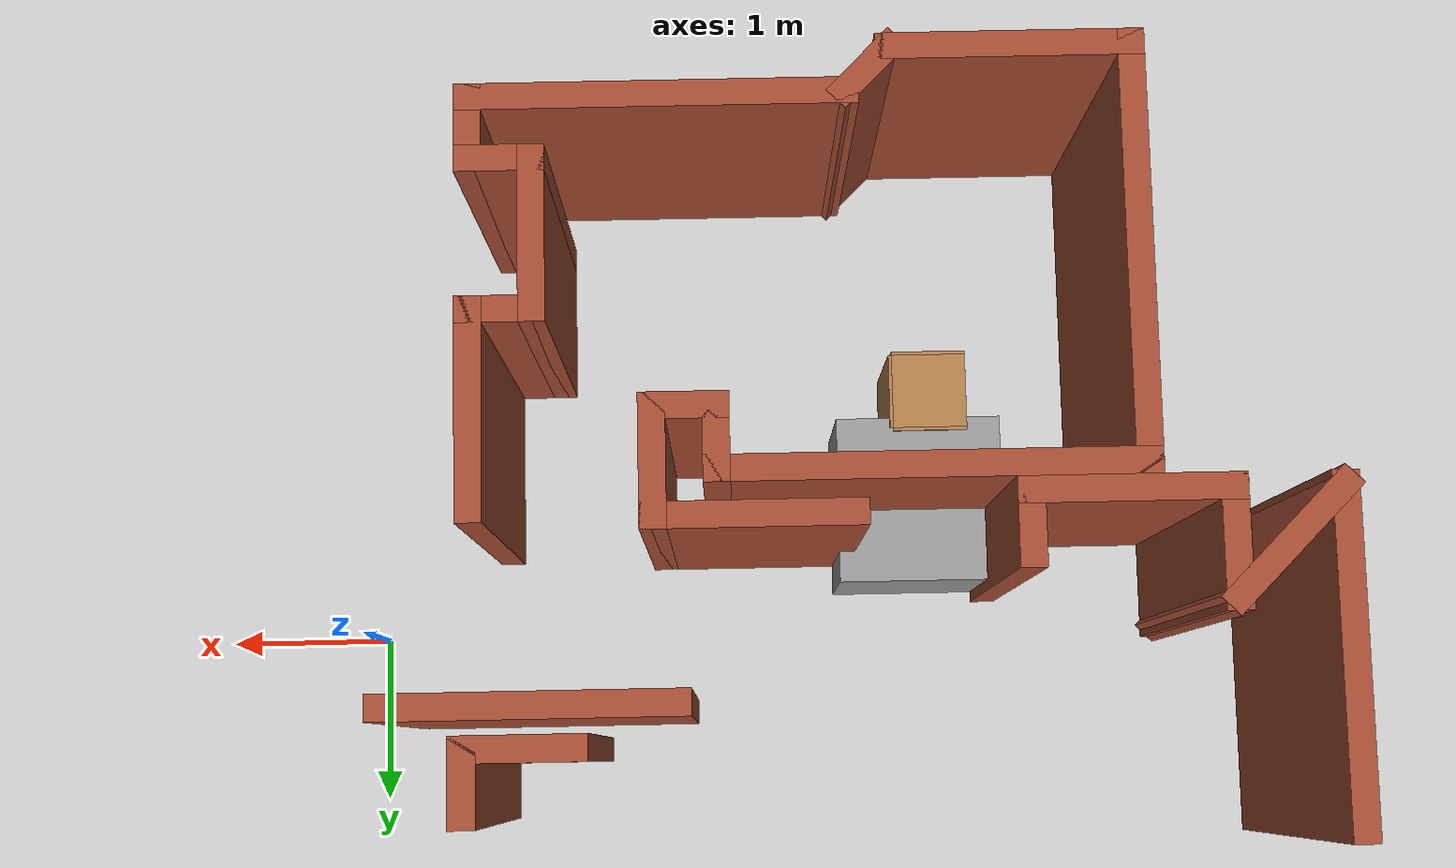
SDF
<sdf version="1.6">
 <world name="default">
  <model name="ground_plane">
   <static>1</static>
   <link name="link">
    <collision name="collision">
     <geometry><plane><normal>0 0 1</normal><size>100 100</size></plane></geometry>
     <surface><friction><ode><mu>100</mu><mu2>50</mu2></ode></friction></surface>
    </collision>
    <visual name="visual">
     <cast_shadows>0</cast_shadows>
     <geometry><plane><normal>0 0 1</normal><size>100 100</size></plane></geometry>
     <material>
      <script><uri>file://media/materials/scripts/gazebo.material</uri><name>Gazebo/Grey</name></script>
     </material>
    </visual>
   </link>
  </model>
  <model name="map_45">
   <link name="Wall_10">
    <pose>-5.12777 0.124368 0 0 0 -1.5708</pose>
    <visual name="Wall_10_Visual">
     <pose>0 0 1.25 0 -0 0</pose>
     <geometry><box><size>2 0.15 2.5</size></box></geometry>
     <material>
      <script><uri>file://media/materials/scripts/gazebo.material</uri><name>Gazebo/Bricks</name></script>
      <ambient>1 1 1 1</ambient>
      <shader type="pixel"/>
     </material>
     <meta><layer>0</layer></meta>
    </visual>
    <collision name="Wall_10_Collision">
     <pose>0 0 1.25 0 -0 0</pose>
     <geometry><box><size>2 0.15 2.5</size></box></geometry>
     <surface>
      <friction>
       <ode><mu>1</mu><mu2>1</mu2><fdir1>0 0 0</fdir1><slip1>0</slip1><slip2>0</slip2></ode>
       <torsional>
        <coefficient>1</coefficient>
        <patch_radius>0</patch_radius>
        <surface_radius>0</surface_radius>
        <use_patch_radius>1</use_patch_radius>
        <ode><slip>0</slip></ode>
       </torsional>
      </friction>
      <bounce><restitution_coefficient>0</restitution_coefficient><threshold>1e+06</threshold></bounce>
      <contact>
       <collide_without_contact>0</collide_without_contact>
       <collide_without_contact_bitmask>1</collide_without_contact_bitmask>
       <collide_bitmask>1</collide_bitmask>
       <ode>
        <soft_cfm>0</soft_cfm>
        <soft_erp>0.2</soft_erp>
        <kp>1e+13</kp>
        <kd>1</kd>
        <max_vel>0.01</max_vel>
        <min_depth>0</min_depth>
       </ode>
       <bullet>
        <split_impulse>1</split_impulse>
        <split_impulse_penetration_threshold>-0.01</split_impulse_penetration_threshold>
        <soft_cfm>0</soft_cfm>
        <soft_erp>0.2</soft_erp>
        <kp>1e+13</kp>
        <kd>1</kd>
       </bullet>
      </contact>
     </surface>
    </collision>
   </link>
   <link name="Wall_109">
    <pose>-0.640718 0.533638 0 0 -0 0</pose>
    <visual name="Wall_109_Visual">
     <pose>0 0 1.25 0 -0 0</pose>
     <geometry><box><size>0.75 0.15 2.5</size></box></geometry>
     <material>
      <script><uri>file://media/materials/scripts/gazebo.material</uri><name>Gazebo/Bricks</name></script>
      <ambient>1 1 1 1</ambient>
      <shader type="pixel"/>
     </material>
     <meta><layer>0</layer></meta>
    </visual>
    <collision name="Wall_109_Collision">
     <pose>0 0 1.25 0 -0 0</pose>
     <geometry><box><size>0.75 0.15 2.5</size></box></geometry>
     <surface>
      <friction>
       <ode><mu>1</mu><mu2>1</mu2><fdir1>0 0 0</fdir1><slip1>0</slip1><slip2>0</slip2></ode>
       <torsional>
        <coefficient>1</coefficient>
        <patch_radius>0</patch_radius>
        <surface_radius>0</surface_radius>
        <use_patch_radius>1</use_patch_radius>
        <ode><slip>0</slip></ode>
       </torsional>
      </friction>
      <bounce><restitution_coefficient>0</restitution_coefficient><threshold>1e+06</threshold></bounce>
      <contact>
       <collide_without_contact>0</collide_without_contact>
       <collide_without_contact_bitmask>1</collide_without_contact_bitmask>
       <collide_bitmask>1</collide_bitmask>
       <ode>
        <soft_cfm>0</soft_cfm>
        <soft_erp>0.2</soft_erp>
        <kp>1e+13</kp>
        <kd>1</kd>
        <max_vel>0.01</max_vel>
        <min_depth>0</min_depth>
       </ode>
       <bullet>
        <split_impulse>1</split_impulse>
        <split_impulse_penetration_threshold>-0.01</split_impulse_penetration_threshold>
        <soft_cfm>0</soft_cfm>
        <soft_erp>0.2</soft_erp>
        <kp>1e+13</kp>
        <kd>1</kd>
       </bullet>
      </contact>
     </surface>
    </collision>
   </link>
   <link name="Wall_11">
    <pose>-4.82725 -0.500111 0 0 -0 0.785398</pose>
    <visual name="Wall_11_Visual">
     <pose>0 0 1.25 0 -0 0</pose>
     <geometry><box><size>1 0.15 2.5</size></box></geometry>
     <material>
      <script><uri>file://media/materials/scripts/gazebo.material</uri><name>Gazebo/Bricks</name></script>
      <ambient>1 1 1 1</ambient>
      <shader type="pixel"/>
     </material>
     <meta><layer>0</layer></meta>
    </visual>
    <collision name="Wall_11_Collision">
     <pose>0 0 1.25 0 -0 0</pose>
     <geometry><box><size>1 0.15 2.5</size></box></geometry>
     <surface>
      <friction>
       <ode><mu>1</mu><mu2>1</mu2><fdir1>0 0 0</fdir1><slip1>0</slip1><slip2>0</slip2></ode>
       <torsional>
        <coefficient>1</coefficient>
        <patch_radius>0</patch_radius>
        <surface_radius>0</surface_radius>
        <use_patch_radius>1</use_patch_radius>
        <ode><slip>0</slip></ode>
       </torsional>
      </friction>
      <bounce><restitution_coefficient>0</restitution_coefficient><threshold>1e+06</threshold></bounce>
      <contact>
       <collide_without_contact>0</collide_without_contact>
       <collide_without_contact_bitmask>1</collide_without_contact_bitmask>
       <collide_bitmask>1</collide_bitmask>
       <ode>
        <soft_cfm>0</soft_cfm>
        <soft_erp>0.2</soft_erp>
        <kp>1e+13</kp>
        <kd>1</kd>
        <max_vel>0.01</max_vel>
        <min_depth>0</min_depth>
       </ode>
       <bullet>
        <split_impulse>1</split_impulse>
        <split_impulse_penetration_threshold>-0.01</split_impulse_penetration_threshold>
        <soft_cfm>0</soft_cfm>
        <soft_erp>0.2</soft_erp>
        <kp>1e+13</kp>
        <kd>1</kd>
       </bullet>
      </contact>
     </surface>
    </collision>
   </link>
   <link name="Wall_110">
    <pose>-0.340718 0.708638 0 0 -0 1.5708</pose>
    <visual name="Wall_110_Visual">
     <pose>0 0 1.25 0 -0 0</pose>
     <geometry><box><size>0.5 0.15 2.5</size></box></geometry>
     <material>
      <script><uri>file://media/materials/scripts/gazebo.material</uri><name>Gazebo/Bricks</name></script>
      <ambient>1 1 1 1</ambient>
      <shader type="pixel"/>
     </material>
     <meta><layer>0</layer></meta>
    </visual>
    <collision name="Wall_110_Collision">
     <pose>0 0 1.25 0 -0 0</pose>
     <geometry><box><size>0.5 0.15 2.5</size></box></geometry>
     <surface>
      <friction>
       <ode><mu>1</mu><mu2>1</mu2><fdir1>0 0 0</fdir1><slip1>0</slip1><slip2>0</slip2></ode>
       <torsional>
        <coefficient>1</coefficient>
        <patch_radius>0</patch_radius>
        <surface_radius>0</surface_radius>
        <use_patch_radius>1</use_patch_radius>
        <ode><slip>0</slip></ode>
       </torsional>
      </friction>
      <bounce><restitution_coefficient>0</restitution_coefficient><threshold>1e+06</threshold></bounce>
      <contact>
       <collide_without_contact>0</collide_without_contact>
       <collide_without_contact_bitmask>1</collide_without_contact_bitmask>
       <collide_bitmask>1</collide_bitmask>
       <ode>
        <soft_cfm>0</soft_cfm>
        <soft_erp>0.2</soft_erp>
        <kp>1e+13</kp>
        <kd>1</kd>
        <max_vel>0.01</max_vel>
        <min_depth>0</min_depth>
       </ode>
       <bullet>
        <split_impulse>1</split_impulse>
        <split_impulse_penetration_threshold>-0.01</split_impulse_penetration_threshold>
        <soft_cfm>0</soft_cfm>
        <soft_erp>0.2</soft_erp>
        <kp>1e+13</kp>
        <kd>1</kd>
       </bullet>
      </contact>
     </surface>
    </collision>
   </link>
   <link name="Wall_113">
    <pose>-0.696009 0.304083 0 0 -0 3.14159</pose>
    <visual name="Wall_113_Visual">
     <pose>0 0 1.25 0 -0 0</pose>
     <geometry><box><size>1.75 0.15 2.5</size></box></geometry>
     <material>
      <script><uri>file://media/materials/scripts/gazebo.material</uri><name>Gazebo/Bricks</name></script>
      <ambient>1 1 1 1</ambient>
      <shader type="pixel"/>
     </material>
     <meta><layer>0</layer></meta>
    </visual>
    <collision name="Wall_113_Collision">
     <pose>0 0 1.25 0 -0 0</pose>
     <geometry><box><size>1.75 0.15 2.5</size></box></geometry>
     <surface>
      <friction>
       <ode><mu>1</mu><mu2>1</mu2><fdir1>0 0 0</fdir1><slip1>0</slip1><slip2>0</slip2></ode>
       <torsional>
        <coefficient>1</coefficient>
        <patch_radius>0</patch_radius>
        <surface_radius>0</surface_radius>
        <use_patch_radius>1</use_patch_radius>
        <ode><slip>0</slip></ode>
       </torsional>
      </friction>
      <bounce><restitution_coefficient>0</restitution_coefficient><threshold>1e+06</threshold></bounce>
      <contact>
       <collide_without_contact>0</collide_without_contact>
       <collide_without_contact_bitmask>1</collide_without_contact_bitmask>
       <collide_bitmask>1</collide_bitmask>
       <ode>
        <soft_cfm>0</soft_cfm>
        <soft_erp>0.2</soft_erp>
        <kp>1e+13</kp>
        <kd>1</kd>
        <max_vel>0.01</max_vel>
        <min_depth>0</min_depth>
       </ode>
       <bullet>
        <split_impulse>1</split_impulse>
        <split_impulse_penetration_threshold>-0.01</split_impulse_penetration_threshold>
        <soft_cfm>0</soft_cfm>
        <soft_erp>0.2</soft_erp>
        <kp>1e+13</kp>
        <kd>1</kd>
       </bullet>
      </contact>
     </surface>
    </collision>
   </link>
   <link name="Wall_12">
    <pose>-4.52673 -0.499591 0 0 0 -1.5708</pose>
    <visual name="Wall_12_Visual">
     <pose>0 0 1.25 0 -0 0</pose>
     <geometry><box><size>0.75 0.15 2.5</size></box></geometry>
     <material>
      <script><uri>file://media/materials/scripts/gazebo.material</uri><name>Gazebo/Bricks</name></script>
      <ambient>1 1 1 1</ambient>
      <shader type="pixel"/>
     </material>
     <meta><layer>0</layer></meta>
    </visual>
    <collision name="Wall_12_Collision">
     <pose>0 0 1.25 0 -0 0</pose>
     <geometry><box><size>0.75 0.15 2.5</size></box></geometry>
     <surface>
      <friction>
       <ode><mu>1</mu><mu2>1</mu2><fdir1>0 0 0</fdir1><slip1>0</slip1><slip2>0</slip2></ode>
       <torsional>
        <coefficient>1</coefficient>
        <patch_radius>0</patch_radius>
        <surface_radius>0</surface_radius>
        <use_patch_radius>1</use_patch_radius>
        <ode><slip>0</slip></ode>
       </torsional>
      </friction>
      <bounce><restitution_coefficient>0</restitution_coefficient><threshold>1e+06</threshold></bounce>
      <contact>
       <collide_without_contact>0</collide_without_contact>
       <collide_without_contact_bitmask>1</collide_without_contact_bitmask>
       <collide_bitmask>1</collide_bitmask>
       <ode>
        <soft_cfm>0</soft_cfm>
        <soft_erp>0.2</soft_erp>
        <kp>1e+13</kp>
        <kd>1</kd>
        <max_vel>0.01</max_vel>
        <min_depth>0</min_depth>
       </ode>
       <bullet>
        <split_impulse>1</split_impulse>
        <split_impulse_penetration_threshold>-0.01</split_impulse_penetration_threshold>
        <soft_cfm>0</soft_cfm>
        <soft_erp>0.2</soft_erp>
        <kp>1e+13</kp>
        <kd>1</kd>
       </bullet>
      </contact>
     </surface>
    </collision>
   </link>
   <link name="Wall_15">
    <pose>-3.97673 -0.799591 0 0 -0 0</pose>
    <visual name="Wall_15_Visual">
     <pose>0 0 1.25 0 -0 0</pose>
     <geometry><box><size>1.25 0.15 2.5</size></box></geometry>
     <material>
      <script><uri>file://media/materials/scripts/gazebo.material</uri><name>Gazebo/Bricks</name></script>
      <ambient>1 1 1 1</ambient>
      <shader type="pixel"/>
     </material>
     <meta><layer>0</layer></meta>
    </visual>
    <collision name="Wall_15_Collision">
     <pose>0 0 1.25 0 -0 0</pose>
     <geometry><box><size>1.25 0.15 2.5</size></box></geometry>
     <surface>
      <friction>
       <ode><mu>1</mu><mu2>1</mu2><fdir1>0 0 0</fdir1><slip1>0</slip1><slip2>0</slip2></ode>
       <torsional>
        <coefficient>1</coefficient>
        <patch_radius>0</patch_radius>
        <surface_radius>0</surface_radius>
        <use_patch_radius>1</use_patch_radius>
        <ode><slip>0</slip></ode>
       </torsional>
      </friction>
      <bounce><restitution_coefficient>0</restitution_coefficient><threshold>1e+06</threshold></bounce>
      <contact>
       <collide_without_contact>0</collide_without_contact>
       <collide_without_contact_bitmask>1</collide_without_contact_bitmask>
       <collide_bitmask>1</collide_bitmask>
       <ode>
        <soft_cfm>0</soft_cfm>
        <soft_erp>0.2</soft_erp>
        <kp>1e+13</kp>
        <kd>1</kd>
        <max_vel>0.01</max_vel>
        <min_depth>0</min_depth>
       </ode>
       <bullet>
        <split_impulse>1</split_impulse>
        <split_impulse_penetration_threshold>-0.01</split_impulse_penetration_threshold>
        <soft_cfm>0</soft_cfm>
        <soft_erp>0.2</soft_erp>
        <kp>1e+13</kp>
        <kd>1</kd>
       </bullet>
      </contact>
     </surface>
    </collision>
   </link>
   <link name="Wall_16">
    <pose>-3.42673 -0.624591 0 0 -0 1.5708</pose>
    <visual name="Wall_16_Visual">
     <pose>0 0 1.25 0 -0 0</pose>
     <geometry><box><size>0.5 0.15 2.5</size></box></geometry>
     <material>
      <script><uri>file://media/materials/scripts/gazebo.material</uri><name>Gazebo/Bricks</name></script>
      <ambient>1 1 1 1</ambient>
      <shader type="pixel"/>
     </material>
     <meta><layer>0</layer></meta>
    </visual>
    <collision name="Wall_16_Collision">
     <pose>0 0 1.25 0 -0 0</pose>
     <geometry><box><size>0.5 0.15 2.5</size></box></geometry>
     <surface>
      <friction>
       <ode><mu>1</mu><mu2>1</mu2><fdir1>0 0 0</fdir1><slip1>0</slip1><slip2>0</slip2></ode>
       <torsional>
        <coefficient>1</coefficient>
        <patch_radius>0</patch_radius>
        <surface_radius>0</surface_radius>
        <use_patch_radius>1</use_patch_radius>
        <ode><slip>0</slip></ode>
       </torsional>
      </friction>
      <bounce><restitution_coefficient>0</restitution_coefficient><threshold>1e+06</threshold></bounce>
      <contact>
       <collide_without_contact>0</collide_without_contact>
       <collide_without_contact_bitmask>1</collide_without_contact_bitmask>
       <collide_bitmask>1</collide_bitmask>
       <ode>
        <soft_cfm>0</soft_cfm>
        <soft_erp>0.2</soft_erp>
        <kp>1e+13</kp>
        <kd>1</kd>
        <max_vel>0.01</max_vel>
        <min_depth>0</min_depth>
       </ode>
       <bullet>
        <split_impulse>1</split_impulse>
        <split_impulse_penetration_threshold>-0.01</split_impulse_penetration_threshold>
        <soft_cfm>0</soft_cfm>
        <soft_erp>0.2</soft_erp>
        <kp>1e+13</kp>
        <kd>1</kd>
       </bullet>
      </contact>
     </surface>
    </collision>
   </link>
   <link name="Wall_23">
    <pose>-1.92673 -0.699591 0 0 -0 0</pose>
    <visual name="Wall_23_Visual">
     <pose>0 0 1.25 0 -0 0</pose>
     <geometry><box><size>1.25 0.15 2.5</size></box></geometry>
     <material>
      <script><uri>file://media/materials/scripts/gazebo.material</uri><name>Gazebo/Bricks</name></script>
      <ambient>1 1 1 1</ambient>
      <shader type="pixel"/>
     </material>
     <meta><layer>0</layer></meta>
    </visual>
    <collision name="Wall_23_Collision">
     <pose>0 0 1.25 0 -0 0</pose>
     <geometry><box><size>1.25 0.15 2.5</size></box></geometry>
     <surface>
      <friction>
       <ode><mu>1</mu><mu2>1</mu2><fdir1>0 0 0</fdir1><slip1>0</slip1><slip2>0</slip2></ode>
       <torsional>
        <coefficient>1</coefficient>
        <patch_radius>0</patch_radius>
        <surface_radius>0</surface_radius>
        <use_patch_radius>1</use_patch_radius>
        <ode><slip>0</slip></ode>
       </torsional>
      </friction>
      <bounce><restitution_coefficient>0</restitution_coefficient><threshold>1e+06</threshold></bounce>
      <contact>
       <collide_without_contact>0</collide_without_contact>
       <collide_without_contact_bitmask>1</collide_without_contact_bitmask>
       <collide_bitmask>1</collide_bitmask>
       <ode>
        <soft_cfm>0</soft_cfm>
        <soft_erp>0.2</soft_erp>
        <kp>1e+13</kp>
        <kd>1</kd>
        <max_vel>0.01</max_vel>
        <min_depth>0</min_depth>
       </ode>
       <bullet>
        <split_impulse>1</split_impulse>
        <split_impulse_penetration_threshold>-0.01</split_impulse_penetration_threshold>
        <soft_cfm>0</soft_cfm>
        <soft_erp>0.2</soft_erp>
        <kp>1e+13</kp>
        <kd>1</kd>
       </bullet>
      </contact>
     </surface>
    </collision>
   </link>
   <link name="Wall_24">
    <pose>-1.37673 -0.999591 0 0 0 -1.5708</pose>
    <visual name="Wall_24_Visual">
     <pose>0 0 1.25 0 -0 0</pose>
     <geometry><box><size>0.75 0.15 2.5</size></box></geometry>
     <material>
      <script><uri>file://media/materials/scripts/gazebo.material</uri><name>Gazebo/Bricks</name></script>
      <ambient>1 1 1 1</ambient>
      <shader type="pixel"/>
     </material>
     <meta><layer>0</layer></meta>
    </visual>
    <collision name="Wall_24_Collision">
     <pose>0 0 1.25 0 -0 0</pose>
     <geometry><box><size>0.75 0.15 2.5</size></box></geometry>
     <surface>
      <friction>
       <ode><mu>1</mu><mu2>1</mu2><fdir1>0 0 0</fdir1><slip1>0</slip1><slip2>0</slip2></ode>
       <torsional>
        <coefficient>1</coefficient>
        <patch_radius>0</patch_radius>
        <surface_radius>0</surface_radius>
        <use_patch_radius>1</use_patch_radius>
        <ode><slip>0</slip></ode>
       </torsional>
      </friction>
      <bounce><restitution_coefficient>0</restitution_coefficient><threshold>1e+06</threshold></bounce>
      <contact>
       <collide_without_contact>0</collide_without_contact>
       <collide_without_contact_bitmask>1</collide_without_contact_bitmask>
       <collide_bitmask>1</collide_bitmask>
       <ode>
        <soft_cfm>0</soft_cfm>
        <soft_erp>0.2</soft_erp>
        <kp>1e+13</kp>
        <kd>1</kd>
        <max_vel>0.01</max_vel>
        <min_depth>0</min_depth>
       </ode>
       <bullet>
        <split_impulse>1</split_impulse>
        <split_impulse_penetration_threshold>-0.01</split_impulse_penetration_threshold>
        <soft_cfm>0</soft_cfm>
        <soft_erp>0.2</soft_erp>
        <kp>1e+13</kp>
        <kd>1</kd>
       </bullet>
      </contact>
     </surface>
    </collision>
   </link>
   <link name="Wall_25">
    <pose>-1.55173 -1.29959 0 0 -0 3.14159</pose>
    <visual name="Wall_25_Visual">
     <pose>0 0 1.25 0 -0 0</pose>
     <geometry><box><size>0.5 0.15 2.5</size></box></geometry>
     <material>
      <script><uri>file://media/materials/scripts/gazebo.material</uri><name>Gazebo/Bricks</name></script>
      <ambient>1 1 1 1</ambient>
      <shader type="pixel"/>
     </material>
     <meta><layer>0</layer></meta>
    </visual>
    <collision name="Wall_25_Collision">
     <pose>0 0 1.25 0 -0 0</pose>
     <geometry><box><size>0.5 0.15 2.5</size></box></geometry>
     <surface>
      <friction>
       <ode><mu>1</mu><mu2>1</mu2><fdir1>0 0 0</fdir1><slip1>0</slip1><slip2>0</slip2></ode>
       <torsional>
        <coefficient>1</coefficient>
        <patch_radius>0</patch_radius>
        <surface_radius>0</surface_radius>
        <use_patch_radius>1</use_patch_radius>
        <ode><slip>0</slip></ode>
       </torsional>
      </friction>
      <bounce><restitution_coefficient>0</restitution_coefficient><threshold>1e+06</threshold></bounce>
      <contact>
       <collide_without_contact>0</collide_without_contact>
       <collide_without_contact_bitmask>1</collide_without_contact_bitmask>
       <collide_bitmask>1</collide_bitmask>
       <ode>
        <soft_cfm>0</soft_cfm>
        <soft_erp>0.2</soft_erp>
        <kp>1e+13</kp>
        <kd>1</kd>
        <max_vel>0.01</max_vel>
        <min_depth>0</min_depth>
       </ode>
       <bullet>
        <split_impulse>1</split_impulse>
        <split_impulse_penetration_threshold>-0.01</split_impulse_penetration_threshold>
        <soft_cfm>0</soft_cfm>
        <soft_erp>0.2</soft_erp>
        <kp>1e+13</kp>
        <kd>1</kd>
       </bullet>
      </contact>
     </surface>
    </collision>
   </link>
   <link name="Wall_26">
    <pose>-1.72673 -1.12459 0 0 -0 1.5708</pose>
    <visual name="Wall_26_Visual">
     <pose>0 0 1.25 0 -0 0</pose>
     <geometry><box><size>0.5 0.15 2.5</size></box></geometry>
     <material>
      <script><uri>file://media/materials/scripts/gazebo.material</uri><name>Gazebo/Bricks</name></script>
      <ambient>1 1 1 1</ambient>
      <shader type="pixel"/>
     </material>
     <meta><layer>0</layer></meta>
    </visual>
    <collision name="Wall_26_Collision">
     <pose>0 0 1.25 0 -0 0</pose>
     <geometry><box><size>0.5 0.15 2.5</size></box></geometry>
     <surface>
      <friction>
       <ode><mu>1</mu><mu2>1</mu2><fdir1>0 0 0</fdir1><slip1>0</slip1><slip2>0</slip2></ode>
       <torsional>
        <coefficient>1</coefficient>
        <patch_radius>0</patch_radius>
        <surface_radius>0</surface_radius>
        <use_patch_radius>1</use_patch_radius>
        <ode><slip>0</slip></ode>
       </torsional>
      </friction>
      <bounce><restitution_coefficient>0</restitution_coefficient><threshold>1e+06</threshold></bounce>
      <contact>
       <collide_without_contact>0</collide_without_contact>
       <collide_without_contact_bitmask>1</collide_without_contact_bitmask>
       <collide_bitmask>1</collide_bitmask>
       <ode>
        <soft_cfm>0</soft_cfm>
        <soft_erp>0.2</soft_erp>
        <kp>1e+13</kp>
        <kd>1</kd>
        <max_vel>0.01</max_vel>
        <min_depth>0</min_depth>
       </ode>
       <bullet>
        <split_impulse>1</split_impulse>
        <split_impulse_penetration_threshold>-0.01</split_impulse_penetration_threshold>
        <soft_cfm>0</soft_cfm>
        <soft_erp>0.2</soft_erp>
        <kp>1e+13</kp>
        <kd>1</kd>
       </bullet>
      </contact>
     </surface>
    </collision>
   </link>
   <link name="Wall_27">
    <pose>-2.90173 -0.949591 0 0 -0 3.14159</pose>
    <visual name="Wall_27_Visual">
     <pose>0 0 1.25 0 -0 0</pose>
     <geometry><box><size>2.5 0.15 2.5</size></box></geometry>
     <material>
      <script><uri>file://media/materials/scripts/gazebo.material</uri><name>Gazebo/Bricks</name></script>
      <ambient>1 1 1 1</ambient>
      <shader type="pixel"/>
     </material>
     <meta><layer>0</layer></meta>
    </visual>
    <collision name="Wall_27_Collision">
     <pose>0 0 1.25 0 -0 0</pose>
     <geometry><box><size>2.5 0.15 2.5</size></box></geometry>
     <surface>
      <friction>
       <ode><mu>1</mu><mu2>1</mu2><fdir1>0 0 0</fdir1><slip1>0</slip1><slip2>0</slip2></ode>
       <torsional>
        <coefficient>1</coefficient>
        <patch_radius>0</patch_radius>
        <surface_radius>0</surface_radius>
        <use_patch_radius>1</use_patch_radius>
        <ode><slip>0</slip></ode>
       </torsional>
      </friction>
      <bounce><restitution_coefficient>0</restitution_coefficient><threshold>1e+06</threshold></bounce>
      <contact>
       <collide_without_contact>0</collide_without_contact>
       <collide_without_contact_bitmask>1</collide_without_contact_bitmask>
       <collide_bitmask>1</collide_bitmask>
       <ode>
        <soft_cfm>0</soft_cfm>
        <soft_erp>0.2</soft_erp>
        <kp>1e+13</kp>
        <kd>1</kd>
        <max_vel>0.01</max_vel>
        <min_depth>0</min_depth>
       </ode>
       <bullet>
        <split_impulse>1</split_impulse>
        <split_impulse_penetration_threshold>-0.01</split_impulse_penetration_threshold>
        <soft_cfm>0</soft_cfm>
        <soft_erp>0.2</soft_erp>
        <kp>1e+13</kp>
        <kd>1</kd>
       </bullet>
      </contact>
     </surface>
    </collision>
   </link>
   <link name="Wall_28">
    <pose>-4.07673 -2.12459 0 0 0 -1.5708</pose>
    <visual name="Wall_28_Visual">
     <pose>0 0 1.25 0 -0 0</pose>
     <geometry><box><size>2.5 0.15 2.5</size></box></geometry>
     <material>
      <script><uri>file://media/materials/scripts/gazebo.material</uri><name>Gazebo/Bricks</name></script>
      <ambient>1 1 1 1</ambient>
      <shader type="pixel"/>
     </material>
     <meta><layer>0</layer></meta>
    </visual>
    <collision name="Wall_28_Collision">
     <pose>0 0 1.25 0 -0 0</pose>
     <geometry><box><size>2.5 0.15 2.5</size></box></geometry>
     <surface>
      <friction>
       <ode><mu>1</mu><mu2>1</mu2><fdir1>0 0 0</fdir1><slip1>0</slip1><slip2>0</slip2></ode>
       <torsional>
        <coefficient>1</coefficient>
        <patch_radius>0</patch_radius>
        <surface_radius>0</surface_radius>
        <use_patch_radius>1</use_patch_radius>
        <ode><slip>0</slip></ode>
       </torsional>
      </friction>
      <bounce><restitution_coefficient>0</restitution_coefficient><threshold>1e+06</threshold></bounce>
      <contact>
       <collide_without_contact>0</collide_without_contact>
       <collide_without_contact_bitmask>1</collide_without_contact_bitmask>
       <collide_bitmask>1</collide_bitmask>
       <ode>
        <soft_cfm>0</soft_cfm>
        <soft_erp>0.2</soft_erp>
        <kp>1e+13</kp>
        <kd>1</kd>
        <max_vel>0.01</max_vel>
        <min_depth>0</min_depth>
       </ode>
       <bullet>
        <split_impulse>1</split_impulse>
        <split_impulse_penetration_threshold>-0.01</split_impulse_penetration_threshold>
        <soft_cfm>0</soft_cfm>
        <soft_erp>0.2</soft_erp>
        <kp>1e+13</kp>
        <kd>1</kd>
       </bullet>
      </contact>
     </surface>
    </collision>
   </link>
   <link name="Wall_29">
    <pose>-3.40173 -3.29959 0 0 -0 0</pose>
    <visual name="Wall_29_Visual">
     <pose>0 0 1.25 0 -0 0</pose>
     <geometry><box><size>1.5 0.15 2.5</size></box></geometry>
     <material>
      <script><uri>file://media/materials/scripts/gazebo.material</uri><name>Gazebo/Bricks</name></script>
      <ambient>1 1 1 1</ambient>
      <shader type="pixel"/>
     </material>
     <meta><layer>0</layer></meta>
    </visual>
    <collision name="Wall_29_Collision">
     <pose>0 0 1.25 0 -0 0</pose>
     <geometry><box><size>1.5 0.15 2.5</size></box></geometry>
     <surface>
      <friction>
       <ode><mu>1</mu><mu2>1</mu2><fdir1>0 0 0</fdir1><slip1>0</slip1><slip2>0</slip2></ode>
       <torsional>
        <coefficient>1</coefficient>
        <patch_radius>0</patch_radius>
        <surface_radius>0</surface_radius>
        <use_patch_radius>1</use_patch_radius>
        <ode><slip>0</slip></ode>
       </torsional>
      </friction>
      <bounce><restitution_coefficient>0</restitution_coefficient><threshold>1e+06</threshold></bounce>
      <contact>
       <collide_without_contact>0</collide_without_contact>
       <collide_without_contact_bitmask>1</collide_without_contact_bitmask>
       <collide_bitmask>1</collide_bitmask>
       <ode>
        <soft_cfm>0</soft_cfm>
        <soft_erp>0.2</soft_erp>
        <kp>1e+13</kp>
        <kd>1</kd>
        <max_vel>0.01</max_vel>
        <min_depth>0</min_depth>
       </ode>
       <bullet>
        <split_impulse>1</split_impulse>
        <split_impulse_penetration_threshold>-0.01</split_impulse_penetration_threshold>
        <soft_cfm>0</soft_cfm>
        <soft_erp>0.2</soft_erp>
        <kp>1e+13</kp>
        <kd>1</kd>
       </bullet>
      </contact>
     </surface>
    </collision>
   </link>
   <link name="Wall_30">
    <pose>-2.60298 -3.17585 0 0 -0 0.785398</pose>
    <visual name="Wall_30_Visual">
     <pose>0 0 1.25 0 -0 0</pose>
     <geometry><box><size>0.5 0.15 2.5</size></box></geometry>
     <material>
      <script><uri>file://media/materials/scripts/gazebo.material</uri><name>Gazebo/Bricks</name></script>
      <ambient>1 1 1 1</ambient>
      <shader type="pixel"/>
     </material>
     <meta><layer>0</layer></meta>
    </visual>
    <collision name="Wall_30_Collision">
     <pose>0 0 1.25 0 -0 0</pose>
     <geometry><box><size>0.5 0.15 2.5</size></box></geometry>
     <surface>
      <friction>
       <ode><mu>1</mu><mu2>1</mu2><fdir1>0 0 0</fdir1><slip1>0</slip1><slip2>0</slip2></ode>
       <torsional>
        <coefficient>1</coefficient>
        <patch_radius>0</patch_radius>
        <surface_radius>0</surface_radius>
        <use_patch_radius>1</use_patch_radius>
        <ode><slip>0</slip></ode>
       </torsional>
      </friction>
      <bounce><restitution_coefficient>0</restitution_coefficient><threshold>1e+06</threshold></bounce>
      <contact>
       <collide_without_contact>0</collide_without_contact>
       <collide_without_contact_bitmask>1</collide_without_contact_bitmask>
       <collide_bitmask>1</collide_bitmask>
       <ode>
        <soft_cfm>0</soft_cfm>
        <soft_erp>0.2</soft_erp>
        <kp>1e+13</kp>
        <kd>1</kd>
        <max_vel>0.01</max_vel>
        <min_depth>0</min_depth>
       </ode>
       <bullet>
        <split_impulse>1</split_impulse>
        <split_impulse_penetration_threshold>-0.01</split_impulse_penetration_threshold>
        <soft_cfm>0</soft_cfm>
        <soft_erp>0.2</soft_erp>
        <kp>1e+13</kp>
        <kd>1</kd>
       </bullet>
      </contact>
     </surface>
    </collision>
   </link>
   <link name="Wall_31">
    <pose>-1.42924 -3.0521 0 0 -0 0</pose>
    <visual name="Wall_31_Visual">
     <pose>0 0 1.25 0 -0 0</pose>
     <geometry><box><size>2.25 0.15 2.5</size></box></geometry>
     <material>
      <script><uri>file://media/materials/scripts/gazebo.material</uri><name>Gazebo/Bricks</name></script>
      <ambient>1 1 1 1</ambient>
      <shader type="pixel"/>
     </material>
     <meta><layer>0</layer></meta>
    </visual>
    <collision name="Wall_31_Collision">
     <pose>0 0 1.25 0 -0 0</pose>
     <geometry><box><size>2.25 0.15 2.5</size></box></geometry>
     <surface>
      <friction>
       <ode><mu>1</mu><mu2>1</mu2><fdir1>0 0 0</fdir1><slip1>0</slip1><slip2>0</slip2></ode>
       <torsional>
        <coefficient>1</coefficient>
        <patch_radius>0</patch_radius>
        <surface_radius>0</surface_radius>
        <use_patch_radius>1</use_patch_radius>
        <ode><slip>0</slip></ode>
       </torsional>
      </friction>
      <bounce><restitution_coefficient>0</restitution_coefficient><threshold>1e+06</threshold></bounce>
      <contact>
       <collide_without_contact>0</collide_without_contact>
       <collide_without_contact_bitmask>1</collide_without_contact_bitmask>
       <collide_bitmask>1</collide_bitmask>
       <ode>
        <soft_cfm>0</soft_cfm>
        <soft_erp>0.2</soft_erp>
        <kp>1e+13</kp>
        <kd>1</kd>
        <max_vel>0.01</max_vel>
        <min_depth>0</min_depth>
       </ode>
       <bullet>
        <split_impulse>1</split_impulse>
        <split_impulse_penetration_threshold>-0.01</split_impulse_penetration_threshold>
        <soft_cfm>0</soft_cfm>
        <soft_erp>0.2</soft_erp>
        <kp>1e+13</kp>
        <kd>1</kd>
       </bullet>
      </contact>
     </surface>
    </collision>
   </link>
   <link name="Wall_32">
    <pose>-0.37924 -2.8771 0 0 -0 1.5708</pose>
    <visual name="Wall_32_Visual">
     <pose>0 0 1.25 0 -0 0</pose>
     <geometry><box><size>0.5 0.15 2.5</size></box></geometry>
     <material>
      <script><uri>file://media/materials/scripts/gazebo.material</uri><name>Gazebo/Bricks</name></script>
      <ambient>1 1 1 1</ambient>
      <shader type="pixel"/>
     </material>
     <meta><layer>0</layer></meta>
    </visual>
    <collision name="Wall_32_Collision">
     <pose>0 0 1.25 0 -0 0</pose>
     <geometry><box><size>0.5 0.15 2.5</size></box></geometry>
     <surface>
      <friction>
       <ode><mu>1</mu><mu2>1</mu2><fdir1>0 0 0</fdir1><slip1>0</slip1><slip2>0</slip2></ode>
       <torsional>
        <coefficient>1</coefficient>
        <patch_radius>0</patch_radius>
        <surface_radius>0</surface_radius>
        <use_patch_radius>1</use_patch_radius>
        <ode><slip>0</slip></ode>
       </torsional>
      </friction>
      <bounce><restitution_coefficient>0</restitution_coefficient><threshold>1e+06</threshold></bounce>
      <contact>
       <collide_without_contact>0</collide_without_contact>
       <collide_without_contact_bitmask>1</collide_without_contact_bitmask>
       <collide_bitmask>1</collide_bitmask>
       <ode>
        <soft_cfm>0</soft_cfm>
        <soft_erp>0.2</soft_erp>
        <kp>1e+13</kp>
        <kd>1</kd>
        <max_vel>0.01</max_vel>
        <min_depth>0</min_depth>
       </ode>
       <bullet>
        <split_impulse>1</split_impulse>
        <split_impulse_penetration_threshold>-0.01</split_impulse_penetration_threshold>
        <soft_cfm>0</soft_cfm>
        <soft_erp>0.2</soft_erp>
        <kp>1e+13</kp>
        <kd>1</kd>
       </bullet>
      </contact>
     </surface>
    </collision>
   </link>
   <link name="Wall_33">
    <pose>-0.55424 -2.7021 0 0 -0 3.14159</pose>
    <visual name="Wall_33_Visual">
     <pose>0 0 1.25 0 -0 0</pose>
     <geometry><box><size>0.5 0.15 2.5</size></box></geometry>
     <material>
      <script><uri>file://media/materials/scripts/gazebo.material</uri><name>Gazebo/Bricks</name></script>
      <ambient>1 1 1 1</ambient>
      <shader type="pixel"/>
     </material>
     <meta><layer>0</layer></meta>
    </visual>
    <collision name="Wall_33_Collision">
     <pose>0 0 1.25 0 -0 0</pose>
     <geometry><box><size>0.5 0.15 2.5</size></box></geometry>
     <surface>
      <friction>
       <ode><mu>1</mu><mu2>1</mu2><fdir1>0 0 0</fdir1><slip1>0</slip1><slip2>0</slip2></ode>
       <torsional>
        <coefficient>1</coefficient>
        <patch_radius>0</patch_radius>
        <surface_radius>0</surface_radius>
        <use_patch_radius>1</use_patch_radius>
        <ode><slip>0</slip></ode>
       </torsional>
      </friction>
      <bounce><restitution_coefficient>0</restitution_coefficient><threshold>1e+06</threshold></bounce>
      <contact>
       <collide_without_contact>0</collide_without_contact>
       <collide_without_contact_bitmask>1</collide_without_contact_bitmask>
       <collide_bitmask>1</collide_bitmask>
       <ode>
        <soft_cfm>0</soft_cfm>
        <soft_erp>0.2</soft_erp>
        <kp>1e+13</kp>
        <kd>1</kd>
        <max_vel>0.01</max_vel>
        <min_depth>0</min_depth>
       </ode>
       <bullet>
        <split_impulse>1</split_impulse>
        <split_impulse_penetration_threshold>-0.01</split_impulse_penetration_threshold>
        <soft_cfm>0</soft_cfm>
        <soft_erp>0.2</soft_erp>
        <kp>1e+13</kp>
        <kd>1</kd>
       </bullet>
      </contact>
     </surface>
    </collision>
   </link>
   <link name="Wall_34">
    <pose>-0.72924 -2.2771 0 0 -0 1.5708</pose>
    <visual name="Wall_34_Visual">
     <pose>0 0 1.25 0 -0 0</pose>
     <geometry><box><size>1 0.15 2.5</size></box></geometry>
     <material>
      <script><uri>file://media/materials/scripts/gazebo.material</uri><name>Gazebo/Bricks</name></script>
      <ambient>1 1 1 1</ambient>
      <shader type="pixel"/>
     </material>
     <meta><layer>0</layer></meta>
    </visual>
    <collision name="Wall_34_Collision">
     <pose>0 0 1.25 0 -0 0</pose>
     <geometry><box><size>1 0.15 2.5</size></box></geometry>
     <surface>
      <friction>
       <ode><mu>1</mu><mu2>1</mu2><fdir1>0 0 0</fdir1><slip1>0</slip1><slip2>0</slip2></ode>
       <torsional>
        <coefficient>1</coefficient>
        <patch_radius>0</patch_radius>
        <surface_radius>0</surface_radius>
        <use_patch_radius>1</use_patch_radius>
        <ode><slip>0</slip></ode>
       </torsional>
      </friction>
      <bounce><restitution_coefficient>0</restitution_coefficient><threshold>1e+06</threshold></bounce>
      <contact>
       <collide_without_contact>0</collide_without_contact>
       <collide_without_contact_bitmask>1</collide_without_contact_bitmask>
       <collide_bitmask>1</collide_bitmask>
       <ode>
        <soft_cfm>0</soft_cfm>
        <soft_erp>0.2</soft_erp>
        <kp>1e+13</kp>
        <kd>1</kd>
        <max_vel>0.01</max_vel>
        <min_depth>0</min_depth>
       </ode>
       <bullet>
        <split_impulse>1</split_impulse>
        <split_impulse_penetration_threshold>-0.01</split_impulse_penetration_threshold>
        <soft_cfm>0</soft_cfm>
        <soft_erp>0.2</soft_erp>
        <kp>1e+13</kp>
        <kd>1</kd>
       </bullet>
      </contact>
     </surface>
    </collision>
   </link>
   <link name="Wall_37">
    <pose>-0.55424 -1.8521 0 0 -0 0</pose>
    <visual name="Wall_37_Visual">
     <pose>0 0 1.25 0 -0 0</pose>
     <geometry><box><size>0.5 0.15 2.5</size></box></geometry>
     <material>
      <script><uri>file://media/materials/scripts/gazebo.material</uri><name>Gazebo/Bricks</name></script>
      <ambient>1 1 1 1</ambient>
      <shader type="pixel"/>
     </material>
     <meta><layer>0</layer></meta>
    </visual>
    <collision name="Wall_37_Collision">
     <pose>0 0 1.25 0 -0 0</pose>
     <geometry><box><size>0.5 0.15 2.5</size></box></geometry>
     <surface>
      <friction>
       <ode><mu>1</mu><mu2>1</mu2><fdir1>0 0 0</fdir1><slip1>0</slip1><slip2>0</slip2></ode>
       <torsional>
        <coefficient>1</coefficient>
        <patch_radius>0</patch_radius>
        <surface_radius>0</surface_radius>
        <use_patch_radius>1</use_patch_radius>
        <ode><slip>0</slip></ode>
       </torsional>
      </friction>
      <bounce><restitution_coefficient>0</restitution_coefficient><threshold>1e+06</threshold></bounce>
      <contact>
       <collide_without_contact>0</collide_without_contact>
       <collide_without_contact_bitmask>1</collide_without_contact_bitmask>
       <collide_bitmask>1</collide_bitmask>
       <ode>
        <soft_cfm>0</soft_cfm>
        <soft_erp>0.2</soft_erp>
        <kp>1e+13</kp>
        <kd>1</kd>
        <max_vel>0.01</max_vel>
        <min_depth>0</min_depth>
       </ode>
       <bullet>
        <split_impulse>1</split_impulse>
        <split_impulse_penetration_threshold>-0.01</split_impulse_penetration_threshold>
        <soft_cfm>0</soft_cfm>
        <soft_erp>0.2</soft_erp>
        <kp>1e+13</kp>
        <kd>1</kd>
       </bullet>
      </contact>
     </surface>
    </collision>
   </link>
   <link name="Wall_40">
    <pose>-0.37924 -1.3021 0 0 -0 1.5708</pose>
    <visual name="Wall_40_Visual">
     <pose>0 0 1.25 0 -0 0</pose>
     <geometry><box><size>1.25 0.15 2.5</size></box></geometry>
     <material>
      <script><uri>file://media/materials/scripts/gazebo.material</uri><name>Gazebo/Bricks</name></script>
      <ambient>1 1 1 1</ambient>
      <shader type="pixel"/>
     </material>
     <meta><layer>0</layer></meta>
    </visual>
    <collision name="Wall_40_Collision">
     <pose>0 0 1.25 0 -0 0</pose>
     <geometry><box><size>1.25 0.15 2.5</size></box></geometry>
     <surface>
      <friction>
       <ode><mu>1</mu><mu2>1</mu2><fdir1>0 0 0</fdir1><slip1>0</slip1><slip2>0</slip2></ode>
       <torsional>
        <coefficient>1</coefficient>
        <patch_radius>0</patch_radius>
        <surface_radius>0</surface_radius>
        <use_patch_radius>1</use_patch_radius>
        <ode><slip>0</slip></ode>
       </torsional>
      </friction>
      <bounce><restitution_coefficient>0</restitution_coefficient><threshold>1e+06</threshold></bounce>
      <contact>
       <collide_without_contact>0</collide_without_contact>
       <collide_without_contact_bitmask>1</collide_without_contact_bitmask>
       <collide_bitmask>1</collide_bitmask>
       <ode>
        <soft_cfm>0</soft_cfm>
        <soft_erp>0.2</soft_erp>
        <kp>1e+13</kp>
        <kd>1</kd>
        <max_vel>0.01</max_vel>
        <min_depth>0</min_depth>
       </ode>
       <bullet>
        <split_impulse>1</split_impulse>
        <split_impulse_penetration_threshold>-0.01</split_impulse_penetration_threshold>
        <soft_cfm>0</soft_cfm>
        <soft_erp>0.2</soft_erp>
        <kp>1e+13</kp>
        <kd>1</kd>
       </bullet>
      </contact>
     </surface>
    </collision>
   </link>
   <link name="link_0">
    <inertial>
     <mass>1</mass>
     <inertia>
      <ixx>0.166667</ixx>
      <ixy>0</ixy>
      <ixz>0</ixz>
      <iyy>0.166667</iyy>
      <iyz>0</iyz>
      <izz>0.166667</izz>
     </inertia>
    </inertial>
    <pose>-2.95749 -0.939725 0.5 0 -0 0</pose>
    <visual name="visual">
     <geometry><box><size>1 1 1</size></box></geometry>
     <material>
      <lighting>1</lighting>
      <script><uri>file://media/materials/scripts/gazebo.material</uri><name>Gazebo/Grey</name></script>
      <shader type="pixel"/>
     </material>
    </visual>
    <collision name="collision">
     <geometry><box><size>1 1 1</size></box></geometry>
     <surface>
      <friction>
       <ode><mu>1</mu><mu2>1</mu2><fdir1>0 0 0</fdir1><slip1>0</slip1><slip2>0</slip2></ode>
       <torsional>
        <coefficient>1</coefficient>
        <patch_radius>0</patch_radius>
        <surface_radius>0</surface_radius>
        <use_patch_radius>1</use_patch_radius>
        <ode><slip>0</slip></ode>
       </torsional>
      </friction>
      <bounce><restitution_coefficient>0</restitution_coefficient><threshold>1e+06</threshold></bounce>
      <contact>
       <collide_without_contact>0</collide_without_contact>
       <collide_without_contact_bitmask>1</collide_without_contact_bitmask>
       <collide_bitmask>1</collide_bitmask>
       <ode>
        <soft_cfm>0</soft_cfm>
        <soft_erp>0.2</soft_erp>
        <kp>1e+13</kp>
        <kd>1</kd>
        <max_vel>0.01</max_vel>
        <min_depth>0</min_depth>
       </ode>
       <bullet>
        <split_impulse>1</split_impulse>
        <split_impulse_penetration_threshold>-0.01</split_impulse_penetration_threshold>
        <soft_cfm>0</soft_cfm>
        <soft_erp>0.2</soft_erp>
        <kp>1e+13</kp>
        <kd>1</kd>
       </bullet>
      </contact>
     </surface>
    </collision>
   </link>
   <static>1</static>
   <pose>-0.4298 0.19019 0 0 -0 0</pose>
  </model>
  <model name="cabinet_1">
   <static>1</static>
   <link name="cabinet_bottom_plate">
    <inertial>
     <pose>0 0 -1 0 -0 0</pose>
     <inertia><ixx>2.05</ixx><ixy>0</ixy><ixz>0</ixz><iyy>2.05</iyy><iyz>0</iyz><izz>2.05</izz></inertia>
     <mass>25</mass>
    </inertial>
    <collision name="cabinet_bottom_plate_geom">
     <pose>0 0 0.01 0 -0 0</pose>
     <geometry><box><size>0.45 0.45 0.02</size></box></geometry>
    </collision>
    <visual name="cabinet_bottom_plate_geom_visual">
     <pose>0 0 0.01 0 -0 0</pose>
     <geometry><box><size>0.45 0.45 0.02</size></box></geometry>
     <material>
      <script><uri>file://media/materials/scripts/gazebo.material</uri><name>Gazebo/Wood</name></script>
     </material>
    </visual>
    <collision name="cabinet_bottom_plate_geom_cabinet_back_plate">
     <pose>0.235 0 0.51 0 -0 0</pose>
     <geometry><box><size>0.02 0.45 1.02</size></box></geometry>
    </collision>
    <visual name="cabinet_bottom_plate_geom_cabinet_back_plate_visual">
     <pose>0.235 0 0.51 0 -0 0</pose>
     <geometry><box><size>0.02 0.45 1.02</size></box></geometry>
     <material>
      <script><uri>file://media/materials/scripts/gazebo.material</uri><name>Gazebo/Wood</name></script>
     </material>
    </visual>
    <collision name="cabinet_bottom_plate_geom_cabinet_left_plate">
     <pose>0 0.235 0.51 0 -0 0</pose>
     <geometry><box><size>0.45 0.02 1.02</size></box></geometry>
    </collision>
    <visual name="cabinet_bottom_plate_geom_cabinet_left_plate_visual">
     <pose>0 0.235 0.51 0 -0 0</pose>
     <geometry><box><size>0.45 0.02 1.02</size></box></geometry>
     <material>
      <script><uri>file://media/materials/scripts/gazebo.material</uri><name>Gazebo/Wood</name></script>
     </material>
    </visual>
    <collision name="cabinet_bottom_plate_geom_cabinet_middle_plate">
     <pose>0 0 0.51 0 -0 0</pose>
     <geometry><box><size>0.45 0.45 0.02</size></box></geometry>
    </collision>
    <visual name="cabinet_bottom_plate_geom_cabinet_middle_plate_visual">
     <pose>0 0 0.51 0 -0 0</pose>
     <geometry><box><size>0.45 0.45 0.02</size></box></geometry>
     <material>
      <script><uri>file://media/materials/scripts/gazebo.material</uri><name>Gazebo/Wood</name></script>
     </material>
    </visual>
    <collision name="cabinet_bottom_plate_geom_cabinet_right_plate">
     <pose>0 -0.235 0.51 0 -0 0</pose>
     <geometry><box><size>0.45 0.02 1.02</size></box></geometry>
    </collision>
    <visual name="cabinet_bottom_plate_geom_cabinet_right_plate_visual">
     <pose>0 -0.235 0.51 0 -0 0</pose>
     <geometry><box><size>0.45 0.02 1.02</size></box></geometry>
     <material>
      <script><uri>file://media/materials/scripts/gazebo.material</uri><name>Gazebo/Wood</name></script>
     </material>
    </visual>
    <collision name="cabinet_bottom_plate_geom_cabinet_top_plate">
     <pose>0 0 1.01 0 -0 0</pose>
     <geometry><box><size>0.45 0.45 0.02</size></box></geometry>
    </collision>
    <visual name="cabinet_bottom_plate_geom_cabinet_top_plate_visual">
     <pose>0 0 1.01 0 -0 0</pose>
     <geometry><box><size>0.45 0.45 0.02</size></box></geometry>
     <material>
      <script><uri>file://media/materials/scripts/gazebo.material</uri><name>Gazebo/Wood</name></script>
     </material>
    </visual>
   </link>
   <pose>-3.46156 -1.41333 0 0 -0 0</pose>
  </model>
 </world>
</sdf>
